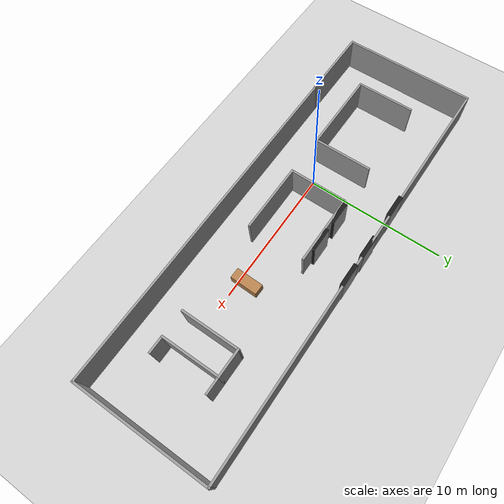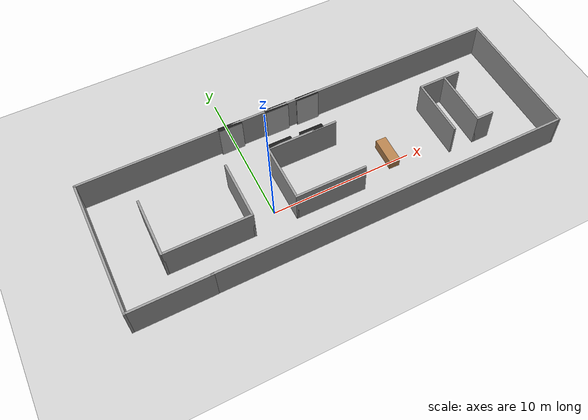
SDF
<sdf version="1.7">
 <world name="default">
  <light name="sun" type="directional">
   <pose>0 0 10 0 -0 0</pose>
   <diffuse>0.8 0.8 0.8 1</diffuse>
   <specular>0.2 0.2 0.2 1</specular>
   <attenuation>
    <range>1000</range>
    <constant>0.9</constant>
    <linear>0.01</linear>
    <quadratic>0.001</quadratic>
   </attenuation>
   <direction>-0.5 0.1 -0.9</direction>
   <spot><inner_angle>0</inner_angle><outer_angle>0</outer_angle><falloff>0</falloff></spot>
  </light>
  <model name="ground_plane">
   <static>1</static>
   <link name="link">
    <collision name="collision">
     <geometry><plane><normal>0 0 1</normal><size>100 100</size></plane></geometry>
     <surface>
      <contact><collide_bitmask>65535</collide_bitmask></contact>
      <friction><ode><mu>100</mu><mu2>50</mu2></ode></friction>
     </surface>
    </collision>
    <visual name="visual">
     <cast_shadows>0</cast_shadows>
     <geometry><plane><normal>0 0 1</normal><size>100 100</size></plane></geometry>
     <material>
      <script><uri>file://media/materials/scripts/gazebo.material</uri><name>Gazebo/Grey</name></script>
     </material>
    </visual>
   </link>
  </model>
  <gravity>0 0 -9.8</gravity>
  <magnetic_field>6e-06 2.3e-05 -4.2e-05</magnetic_field>
  <atmosphere type="adiabatic"/>
  <physics type="ode">
   <max_step_size>0.001</max_step_size>
   <real_time_factor>1</real_time_factor>
   <real_time_update_rate>1000</real_time_update_rate>
  </physics>
  <scene><ambient>0.4 0.4 0.4 1</ambient><background>0.7 0.7 0.7 1</background><shadows>1</shadows></scene>
  <spherical_coordinates>
   <surface_model>EARTH_WGS84</surface_model>
   <latitude_deg>0</latitude_deg>
   <longitude_deg>0</longitude_deg>
   <elevation>0</elevation>
   <heading_deg>0</heading_deg>
  </spherical_coordinates>
  <model name="poster">
   <link name="Wall_0">
    <pose>-4.7604 -4.48691 0 0 -0 0</pose>
    <visual name="Wall_0_Visual">
     <pose>0 0 1.25 0 -0 0</pose>
     <geometry><box><size>1.65 0.3 2.5</size></box></geometry>
     <material>
      <ambient>0.1 0.1 0.1 1</ambient>
      <shader type="pixel"/>
      <script><name>ModelPreview_1::Wall_0::Wall_0_Visual_MATERIAL_</name><uri>__default__</uri></script>
     </material>
     <meta><layer>0</layer></meta>
    </visual>
    <visual name="Poster_Face_Visual">
     <pose>0 0.151 1.25 0 -0 0</pose>
     <geometry><box><size>1.65 0.001 2.5</size></box></geometry>
     <material>
      <script>
       <uri>model://poster/materials/scripts/poster.material</uri>
       <uri>model://poster/materials/textures/poster.png</uri>
       <name>Poster/Image</name>
      </script>
      <shader type="pixel"/>
     </material>
    </visual>
    <visual name="Poster_Back_Visual">
     <pose>0 -0.151 1.25 0 -0 3.14159</pose>
     <geometry><box><size>1.65 0.001 2.5</size></box></geometry>
     <material>
      <script>
       <uri>model://poster/materials/scripts/poster.material</uri>
       <uri>model://poster/materials/textures/poster.png</uri>
       <name>Poster/Image</name>
      </script>
      <shader type="pixel"/>
     </material>
    </visual>
    <collision name="Wall_0_Collision">
     <pose>0 0 1.25 0 -0 0</pose>
     <geometry><box><size>1.65 0.3 2.5</size></box></geometry>
     <surface>
      <friction>
       <ode><mu>1</mu><mu2>1</mu2><fdir1>0 0 0</fdir1><slip1>0</slip1><slip2>0</slip2></ode>
       <torsional>
        <coefficient>1</coefficient>
        <patch_radius>0</patch_radius>
        <surface_radius>0</surface_radius>
        <use_patch_radius>1</use_patch_radius>
        <ode><slip>0</slip></ode>
       </torsional>
      </friction>
      <bounce><restitution_coefficient>0</restitution_coefficient><threshold>1e+06</threshold></bounce>
      <contact>
       <collide_without_contact>0</collide_without_contact>
       <collide_without_contact_bitmask>1</collide_without_contact_bitmask>
       <collide_bitmask>1</collide_bitmask>
       <ode>
        <soft_cfm>0</soft_cfm>
        <soft_erp>0.2</soft_erp>
        <kp>1e+13</kp>
        <kd>1</kd>
        <max_vel>0.01</max_vel>
        <min_depth>0</min_depth>
       </ode>
       <bullet>
        <split_impulse>1</split_impulse>
        <split_impulse_penetration_threshold>-0.01</split_impulse_penetration_threshold>
        <soft_cfm>0</soft_cfm>
        <soft_erp>0.2</soft_erp>
        <kp>1e+13</kp>
        <kd>1</kd>
       </bullet>
      </contact>
     </surface>
    </collision>
   </link>
   <static>1</static>
   <pose>7.88279 10.5175 0 0 -0 0</pose>
  </model>
  <model name="poster_clone">
   <link name="Wall_0">
    <pose>-4.7604 -4.48691 0 0 -0 0</pose>
    <visual name="Wall_0_Visual">
     <pose>0 0 1.25 0 -0 0</pose>
     <geometry><box><size>1.65 0.3 2.5</size></box></geometry>
     <material>
      <ambient>0.1 0.1 0.1 1</ambient>
      <shader type="pixel"/>
      <script><name>ModelPreview_1::Wall_0::Wall_0_Visual_MATERIAL_</name><uri>__default__</uri></script>
     </material>
     <meta><layer>0</layer></meta>
    </visual>
    <visual name="Poster_Face_Visual">
     <pose>0 0.151 1.25 0 -0 0</pose>
     <geometry><box><size>1.65 0.001 2.5</size></box></geometry>
     <material>
      <script>
       <uri>model://poster/materials/scripts/poster.material</uri>
       <uri>model://poster/materials/textures/poster.png</uri>
       <name>Poster/Image</name>
      </script>
      <shader type="pixel"/>
     </material>
    </visual>
    <visual name="Poster_Back_Visual">
     <pose>0 -0.151 1.25 0 -0 3.14159</pose>
     <geometry><box><size>1.65 0.001 2.5</size></box></geometry>
     <material>
      <script>
       <uri>model://poster/materials/scripts/poster.material</uri>
       <uri>model://poster/materials/textures/poster.png</uri>
       <name>Poster/Image</name>
      </script>
      <shader type="pixel"/>
     </material>
    </visual>
    <collision name="Wall_0_Collision">
     <pose>0 0 1.25 0 -0 0</pose>
     <geometry><box><size>1.65 0.3 2.5</size></box></geometry>
     <surface>
      <friction>
       <ode><mu>1</mu><mu2>1</mu2><fdir1>0 0 0</fdir1><slip1>0</slip1><slip2>0</slip2></ode>
       <torsional>
        <coefficient>1</coefficient>
        <patch_radius>0</patch_radius>
        <surface_radius>0</surface_radius>
        <use_patch_radius>1</use_patch_radius>
        <ode><slip>0</slip></ode>
       </torsional>
      </friction>
      <bounce><restitution_coefficient>0</restitution_coefficient><threshold>1e+06</threshold></bounce>
      <contact>
       <collide_without_contact>0</collide_without_contact>
       <collide_without_contact_bitmask>1</collide_without_contact_bitmask>
       <collide_bitmask>1</collide_bitmask>
       <ode>
        <soft_cfm>0</soft_cfm>
        <soft_erp>0.2</soft_erp>
        <kp>1e+13</kp>
        <kd>1</kd>
        <max_vel>0.01</max_vel>
        <min_depth>0</min_depth>
       </ode>
       <bullet>
        <split_impulse>1</split_impulse>
        <split_impulse_penetration_threshold>-0.01</split_impulse_penetration_threshold>
        <soft_cfm>0</soft_cfm>
        <soft_erp>0.2</soft_erp>
        <kp>1e+13</kp>
        <kd>1</kd>
       </bullet>
      </contact>
     </surface>
    </collision>
   </link>
   <static>1</static>
   <pose>10.1479 10.5018 0 0 -0 0</pose>
  </model>
  <model name="poster_clone_0">
   <link name="Wall_0">
    <pose>-4.7604 -4.48691 0 0 -0 0</pose>
    <visual name="Wall_0_Visual">
     <pose>0 0 1.25 0 -0 0</pose>
     <geometry><box><size>1.65 0.3 2.5</size></box></geometry>
     <material>
      <ambient>0.1 0.1 0.1 1</ambient>
      <shader type="pixel"/>
      <script><name>ModelPreview_1::Wall_0::Wall_0_Visual_MATERIAL_</name><uri>__default__</uri></script>
     </material>
     <meta><layer>0</layer></meta>
    </visual>
    <visual name="Poster_Face_Visual">
     <pose>0 0.151 1.25 0 -0 0</pose>
     <geometry><box><size>1.65 0.001 2.5</size></box></geometry>
     <material>
      <script>
       <uri>model://poster/materials/scripts/poster.material</uri>
       <uri>model://poster/materials/textures/poster.png</uri>
       <name>Poster/Image</name>
      </script>
      <shader type="pixel"/>
     </material>
    </visual>
    <visual name="Poster_Back_Visual">
     <pose>0 -0.151 1.25 0 -0 3.14159</pose>
     <geometry><box><size>1.65 0.001 2.5</size></box></geometry>
     <material>
      <script>
       <uri>model://poster/materials/scripts/poster.material</uri>
       <uri>model://poster/materials/textures/poster.png</uri>
       <name>Poster/Image</name>
      </script>
      <shader type="pixel"/>
     </material>
    </visual>
    <collision name="Wall_0_Collision">
     <pose>0 0 1.25 0 -0 0</pose>
     <geometry><box><size>1.65 0.3 2.5</size></box></geometry>
     <surface>
      <friction>
       <ode><mu>1</mu><mu2>1</mu2><fdir1>0 0 0</fdir1><slip1>0</slip1><slip2>0</slip2></ode>
       <torsional>
        <coefficient>1</coefficient>
        <patch_radius>0</patch_radius>
        <surface_radius>0</surface_radius>
        <use_patch_radius>1</use_patch_radius>
        <ode><slip>0</slip></ode>
       </torsional>
      </friction>
      <bounce><restitution_coefficient>0</restitution_coefficient><threshold>1e+06</threshold></bounce>
      <contact>
       <collide_without_contact>0</collide_without_contact>
       <collide_without_contact_bitmask>1</collide_without_contact_bitmask>
       <collide_bitmask>1</collide_bitmask>
       <ode>
        <soft_cfm>0</soft_cfm>
        <soft_erp>0.2</soft_erp>
        <kp>1e+13</kp>
        <kd>1</kd>
        <max_vel>0.01</max_vel>
        <min_depth>0</min_depth>
       </ode>
       <bullet>
        <split_impulse>1</split_impulse>
        <split_impulse_penetration_threshold>-0.01</split_impulse_penetration_threshold>
        <soft_cfm>0</soft_cfm>
        <soft_erp>0.2</soft_erp>
        <kp>1e+13</kp>
        <kd>1</kd>
       </bullet>
      </contact>
     </surface>
    </collision>
   </link>
   <static>1</static>
   <pose>6.8565 7.75311 0 0 -0 0</pose>
  </model>
  <model name="poster_clone_1">
   <link name="Wall_0">
    <pose>-4.7604 -4.48691 0 0 -0 0</pose>
    <visual name="Wall_0_Visual">
     <pose>0 0 1.25 0 -0 0</pose>
     <geometry><box><size>1.65 0.3 2.5</size></box></geometry>
     <material>
      <ambient>0.1 0.1 0.1 1</ambient>
      <shader type="pixel"/>
      <script><name>ModelPreview_1::Wall_0::Wall_0_Visual_MATERIAL_</name><uri>__default__</uri></script>
     </material>
     <meta><layer>0</layer></meta>
    </visual>
    <visual name="Poster_Face_Visual">
     <pose>0 0.151 1.25 0 -0 0</pose>
     <geometry><box><size>1.65 0.001 2.5</size></box></geometry>
     <material>
      <script>
       <uri>model://poster/materials/scripts/poster.material</uri>
       <uri>model://poster/materials/textures/poster.png</uri>
       <name>Poster/Image</name>
      </script>
      <shader type="pixel"/>
     </material>
    </visual>
    <visual name="Poster_Back_Visual">
     <pose>0 -0.151 1.25 0 -0 3.14159</pose>
     <geometry><box><size>1.65 0.001 2.5</size></box></geometry>
     <material>
      <script>
       <uri>model://poster/materials/scripts/poster.material</uri>
       <uri>model://poster/materials/textures/poster.png</uri>
       <name>Poster/Image</name>
      </script>
      <shader type="pixel"/>
     </material>
    </visual>
    <collision name="Wall_0_Collision">
     <pose>0 0 1.25 0 -0 0</pose>
     <geometry><box><size>1.65 0.3 2.5</size></box></geometry>
     <surface>
      <friction>
       <ode><mu>1</mu><mu2>1</mu2><fdir1>0 0 0</fdir1><slip1>0</slip1><slip2>0</slip2></ode>
       <torsional>
        <coefficient>1</coefficient>
        <patch_radius>0</patch_radius>
        <surface_radius>0</surface_radius>
        <use_patch_radius>1</use_patch_radius>
        <ode><slip>0</slip></ode>
       </torsional>
      </friction>
      <bounce><restitution_coefficient>0</restitution_coefficient><threshold>1e+06</threshold></bounce>
      <contact>
       <collide_without_contact>0</collide_without_contact>
       <collide_without_contact_bitmask>1</collide_without_contact_bitmask>
       <collide_bitmask>1</collide_bitmask>
       <ode>
        <soft_cfm>0</soft_cfm>
        <soft_erp>0.2</soft_erp>
        <kp>1e+13</kp>
        <kd>1</kd>
        <max_vel>0.01</max_vel>
        <min_depth>0</min_depth>
       </ode>
       <bullet>
        <split_impulse>1</split_impulse>
        <split_impulse_penetration_threshold>-0.01</split_impulse_penetration_threshold>
        <soft_cfm>0</soft_cfm>
        <soft_erp>0.2</soft_erp>
        <kp>1e+13</kp>
        <kd>1</kd>
       </bullet>
      </contact>
     </surface>
    </collision>
   </link>
   <static>1</static>
   <pose>9.13284 7.74816 0 0 -0 0</pose>
  </model>
  <model name="poster_clone_2">
   <link name="Wall_0">
    <pose>-4.7604 -4.48691 0 0 -0 0</pose>
    <visual name="Wall_0_Visual">
     <pose>0 0 1.25 0 -0 0</pose>
     <geometry><box><size>1.65 0.3 2.5</size></box></geometry>
     <material>
      <ambient>0.1 0.1 0.1 1</ambient>
      <shader type="pixel"/>
      <script><name>ModelPreview_1::Wall_0::Wall_0_Visual_MATERIAL_</name><uri>__default__</uri></script>
     </material>
     <meta><layer>0</layer></meta>
    </visual>
    <visual name="Poster_Face_Visual">
     <pose>0 0.151 1.25 0 -0 0</pose>
     <geometry><box><size>1.65 0.001 2.5</size></box></geometry>
     <material>
      <script>
       <uri>model://poster/materials/scripts/poster.material</uri>
       <uri>model://poster/materials/textures/poster.png</uri>
       <name>Poster/Image</name>
      </script>
      <shader type="pixel"/>
     </material>
    </visual>
    <visual name="Poster_Back_Visual">
     <pose>0 -0.151 1.25 0 -0 3.14159</pose>
     <geometry><box><size>1.65 0.001 2.5</size></box></geometry>
     <material>
      <script>
       <uri>model://poster/materials/scripts/poster.material</uri>
       <uri>model://poster/materials/textures/poster.png</uri>
       <name>Poster/Image</name>
      </script>
      <shader type="pixel"/>
     </material>
    </visual>
    <collision name="Wall_0_Collision">
     <pose>0 0 1.25 0 -0 0</pose>
     <geometry><box><size>1.65 0.3 2.5</size></box></geometry>
     <surface>
      <friction>
       <ode><mu>1</mu><mu2>1</mu2><fdir1>0 0 0</fdir1><slip1>0</slip1><slip2>0</slip2></ode>
       <torsional>
        <coefficient>1</coefficient>
        <patch_radius>0</patch_radius>
        <surface_radius>0</surface_radius>
        <use_patch_radius>1</use_patch_radius>
        <ode><slip>0</slip></ode>
       </torsional>
      </friction>
      <bounce><restitution_coefficient>0</restitution_coefficient><threshold>1e+06</threshold></bounce>
      <contact>
       <collide_without_contact>0</collide_without_contact>
       <collide_without_contact_bitmask>1</collide_without_contact_bitmask>
       <collide_bitmask>1</collide_bitmask>
       <ode>
        <soft_cfm>0</soft_cfm>
        <soft_erp>0.2</soft_erp>
        <kp>1e+13</kp>
        <kd>1</kd>
        <max_vel>0.01</max_vel>
        <min_depth>0</min_depth>
       </ode>
       <bullet>
        <split_impulse>1</split_impulse>
        <split_impulse_penetration_threshold>-0.01</split_impulse_penetration_threshold>
        <soft_cfm>0</soft_cfm>
        <soft_erp>0.2</soft_erp>
        <kp>1e+13</kp>
        <kd>1</kd>
       </bullet>
      </contact>
     </surface>
    </collision>
   </link>
   <static>1</static>
   <pose>4.4872 10.4919 0 0 -0 0</pose>
  </model>
  <model name="table_clone">
   <link name="link_0">
    <inertial>
     <mass>1</mass>
     <inertia>
      <ixx>0.166667</ixx>
      <ixy>0</ixy>
      <ixz>0</ixz>
      <iyy>0.166667</iyy>
      <iyz>0</iyz>
      <izz>0.166667</izz>
     </inertia>
    </inertial>
    <visual name="visual">
     <geometry><box><size>0.75 2 0.75</size></box></geometry>
     <material>
      <lighting>1</lighting>
      <script><uri>file://media/materials/scripts/gazebo.material</uri><name>Gazebo/Wood</name></script>
      <shader type="pixel"><normal_map>__default__</normal_map></shader>
      <ambient>0.3 0.3 0.3 1</ambient>
      <diffuse>0.7 0.7 0.7 1</diffuse>
      <specular>0.01 0.01 0.01 1</specular>
      <emissive>0 0 0 1</emissive>
     </material>
    </visual>
    <collision name="collision">
     <geometry><box><size>0.75 2 0.75</size></box></geometry>
     <surface>
      <friction>
       <ode><mu>1</mu><mu2>1</mu2><fdir1>0 0 0</fdir1><slip1>0</slip1><slip2>0</slip2></ode>
       <torsional>
        <coefficient>1</coefficient>
        <patch_radius>0</patch_radius>
        <surface_radius>0</surface_radius>
        <use_patch_radius>1</use_patch_radius>
        <ode><slip>0</slip></ode>
       </torsional>
      </friction>
      <bounce><restitution_coefficient>0</restitution_coefficient><threshold>1e+06</threshold></bounce>
      <contact>
       <collide_without_contact>0</collide_without_contact>
       <collide_without_contact_bitmask>1</collide_without_contact_bitmask>
       <collide_bitmask>1</collide_bitmask>
       <ode>
        <soft_cfm>0</soft_cfm>
        <soft_erp>0.2</soft_erp>
        <kp>1e+13</kp>
        <kd>1</kd>
        <max_vel>0.01</max_vel>
        <min_depth>0</min_depth>
       </ode>
       <bullet>
        <split_impulse>1</split_impulse>
        <split_impulse_penetration_threshold>-0.01</split_impulse_penetration_threshold>
        <soft_cfm>0</soft_cfm>
        <soft_erp>0.2</soft_erp>
        <kp>1e+13</kp>
        <kd>1</kd>
       </bullet>
      </contact>
     </surface>
    </collision>
   </link>
   <static>1</static>
   <pose>8.76478 0.585867 0.374993 4e-06 6e-06 -0.024219</pose>
  </model>
  <model name="wall">
   <pose>6.9448 1.27247 0 0 -0 0</pose>
   <link name="Wall_6">
    <collision name="Wall_6_Collision">
     <geometry><box><size>25 0.15 2.5</size></box></geometry>
     <pose>0 0 1.25 0 -0 0</pose>
    </collision>
    <visual name="Wall_6_Visual">
     <pose>0 0 1.25 0 -0 0</pose>
     <geometry><box><size>25 0.15 2.5</size></box></geometry>
     <material>
      <script><uri>file://media/materials/scripts/gazebo.material</uri><name>Gazebo/Grey</name></script>
      <ambient>1 1 1 1</ambient>
     </material>
     <meta><layer>0</layer></meta>
    </visual>
    <pose>0 -4.8 0 0 -0 0</pose>
   </link>
   <link name="Wall_9">
    <collision name="Wall_9_Collision">
     <geometry><box><size>9.75 0.15 2.5</size></box></geometry>
     <pose>0 0 1.25 0 -0 0</pose>
    </collision>
    <visual name="Wall_9_Visual">
     <pose>0 0 1.25 0 -0 0</pose>
     <geometry><box><size>9.75 0.15 2.5</size></box></geometry>
     <material>
      <script><uri>file://media/materials/scripts/gazebo.material</uri><name>Gazebo/Grey</name></script>
      <ambient>1 1 1 1</ambient>
     </material>
     <meta><layer>0</layer></meta>
    </visual>
    <pose>12.425 -0 0 0 -0 1.5708</pose>
   </link>
   <static>1</static>
  </model>
  <model name="external_wall">
   <pose>4.28 1.26 0 0 -0 0</pose>
   <link name="Wall_0">
    <collision name="Wall_0_Collision">
     <geometry><box><size>5.5 0.15 2.5</size></box></geometry>
     <pose>0 0 1.25 0 -0 0</pose>
    </collision>
    <visual name="Wall_0_Visual">
     <pose>0 0 1.25 0 -0 0</pose>
     <geometry><box><size>5.5 0.15 2.5</size></box></geometry>
     <material>
      <script><uri>file://media/materials/scripts/gazebo.material</uri><name>Gazebo/Grey</name></script>
      <ambient>1 1 1 1</ambient>
     </material>
     <meta><layer>0</layer></meta>
    </visual>
    <pose>-12.375 -4.8 0 0 -0 3.14159</pose>
   </link>
   <link name="Wall_3">
    <collision name="Wall_3_Collision">
     <geometry><box><size>9.75 0.15 2.5</size></box></geometry>
     <pose>0 0 1.25 0 -0 0</pose>
    </collision>
    <visual name="Wall_3_Visual">
     <pose>0 0 1.25 0 -0 0</pose>
     <geometry><box><size>9.75 0.15 2.5</size></box></geometry>
     <material>
      <script><uri>file://media/materials/scripts/gazebo.material</uri><name>Gazebo/Grey</name></script>
      <ambient>1 1 1 1</ambient>
     </material>
     <meta><layer>0</layer></meta>
    </visual>
    <pose>-15.05 0 0 0 -0 1.5708</pose>
   </link>
   <link name="Wall_5">
    <collision name="Wall_5_Collision">
     <geometry><box><size>30.25 0.15 2.5</size></box></geometry>
     <pose>0 0 1.25 0 -0 0</pose>
    </collision>
    <visual name="Wall_5_Visual">
     <pose>0 0 1.25 0 -0 0</pose>
     <geometry><box><size>30.25 0.15 2.5</size></box></geometry>
     <material>
      <script><uri>file://media/materials/scripts/gazebo.material</uri><name>Gazebo/Grey</name></script>
      <ambient>1 1 1 1</ambient>
     </material>
     <meta><layer>0</layer></meta>
    </visual>
    <pose>0 4.8 0 0 -0 0</pose>
   </link>
   <static>1</static>
  </model>
  <model name="rooms">
   <pose>4.05386 1.08111 0 0 -0 0</pose>
   <link name="Wall_10">
    <collision name="Wall_10_Collision">
     <geometry><box><size>4.25 0.15 2.5</size></box></geometry>
     <pose>0 0 1.25 0 -0 0</pose>
    </collision>
    <visual name="Wall_10_Visual">
     <pose>0 0 1.25 0 -0 0</pose>
     <geometry><box><size>4.25 0.15 2.5</size></box></geometry>
     <material>
      <script><uri>file://media/materials/scripts/gazebo.material</uri><name>Gazebo/Grey</name></script>
      <ambient>1 1 1 1</ambient>
     </material>
     <meta><layer>0</layer></meta>
    </visual>
    <pose>-11.675 0.031 0 0 -0 1.5708</pose>
   </link>
   <link name="Wall_12">
    <collision name="Wall_12_Collision">
     <geometry><box><size>5 0.15 2.5</size></box></geometry>
     <pose>0 0 1.25 0 -0 0</pose>
    </collision>
    <visual name="Wall_12_Visual">
     <pose>0 0 1.25 0 -0 0</pose>
     <geometry><box><size>5 0.15 2.5</size></box></geometry>
     <material>
      <script><uri>file://media/materials/scripts/gazebo.material</uri><name>Gazebo/Grey</name></script>
      <ambient>1 1 1 1</ambient>
     </material>
     <meta><layer>0</layer></meta>
    </visual>
    <pose>-0.434 2.037 0 0 -0 0</pose>
   </link>
   <link name="Wall_15">
    <collision name="Wall_15_Collision">
     <geometry><box><size>4.25 0.15 2.5</size></box></geometry>
     <pose>0 0 1.25 0 -0 0</pose>
    </collision>
    <visual name="Wall_15_Visual">
     <pose>0 0 1.25 0 -0 0</pose>
     <geometry><box><size>4.25 0.15 2.5</size></box></geometry>
     <material>
      <script><uri>file://media/materials/scripts/gazebo.material</uri><name>Gazebo/Grey</name></script>
      <ambient>1 1 1 1</ambient>
     </material>
     <meta><layer>0</layer></meta>
    </visual>
    <pose>-2.859 -0.013 0 0 -0 -1.5708</pose>
   </link>
   <link name="Wall_16">
    <collision name="Wall_16_Collision">
     <geometry><box><size>5 0.15 2.5</size></box></geometry>
     <pose>0 0 1.25 0 -0 0</pose>
    </collision>
    <visual name="Wall_16_Visual">
     <pose>0 0 1.25 0 -0 0</pose>
     <geometry><box><size>5 0.15 2.5</size></box></geometry>
     <material>
      <script><uri>file://media/materials/scripts/gazebo.material</uri><name>Gazebo/Grey</name></script>
      <ambient>1 1 1 1</ambient>
     </material>
     <meta><layer>0</layer></meta>
    </visual>
    <pose>-0.434 -2.063 0 0 -0 0</pose>
   </link>
   <link name="Wall_18">
    <collision name="Wall_18_Collision">
     <geometry><box><size>4.25 0.15 2.5</size></box></geometry>
     <pose>0 0 1.25 0 -0 0</pose>
    </collision>
    <visual name="Wall_18_Visual">
     <pose>0 0 1.25 0 -0 0</pose>
     <geometry><box><size>4.25 0.15 2.5</size></box></geometry>
     <material>
      <script><uri>file://media/materials/scripts/gazebo.material</uri><name>Gazebo/Grey</name></script>
      <ambient>1 1 1 1</ambient>
     </material>
     <meta><layer>0</layer></meta>
    </visual>
    <pose>8.725 -0.031 0 0 -0 1.5708</pose>
   </link>
   <link name="Wall_20">
    <collision name="Wall_20_Collision">
     <geometry><box><size>2 0.15 2.5</size></box></geometry>
     <pose>0 0 1.25 0 -0 0</pose>
    </collision>
    <visual name="Wall_20_Visual">
     <pose>0 0 1.25 0 -0 0</pose>
     <geometry><box><size>2 0.15 2.5</size></box></geometry>
     <material>
      <script><uri>file://media/materials/scripts/gazebo.material</uri><name>Gazebo/Grey</name></script>
      <ambient>1 1 1 1</ambient>
     </material>
     <meta><layer>0</layer></meta>
    </visual>
    <pose>9.65 2.019 0 0 -0 0</pose>
   </link>
   <link name="Wall_22">
    <collision name="Wall_22_Collision">
     <geometry><box><size>4.25 0.15 2.5</size></box></geometry>
     <pose>0 0 1.25 0 -0 0</pose>
    </collision>
    <visual name="Wall_22_Visual">
     <pose>0 0 1.25 0 -0 0</pose>
     <geometry><box><size>4.25 0.15 2.5</size></box></geometry>
     <material>
      <script><uri>file://media/materials/scripts/gazebo.material</uri><name>Gazebo/Grey</name></script>
      <ambient>1 1 1 1</ambient>
     </material>
     <meta><layer>0</layer></meta>
    </visual>
    <pose>10.575 -0.031 0 0 -0 -1.5708</pose>
   </link>
   <link name="Wall_23">
    <collision name="Wall_23_Collision">
     <geometry><box><size>1.25 0.15 2.5</size></box></geometry>
     <pose>0 0 1.25 0 -0 0</pose>
    </collision>
    <visual name="Wall_23_Visual">
     <pose>0 0 1.25 0 -0 0</pose>
     <geometry><box><size>1.25 0.15 2.5</size></box></geometry>
     <material>
      <script><uri>file://media/materials/scripts/gazebo.material</uri><name>Gazebo/Grey</name></script>
      <ambient>1 1 1 1</ambient>
     </material>
     <meta><layer>0</layer></meta>
    </visual>
    <pose>11.125 -2.081 0 0 -0 0</pose>
   </link>
   <link name="Wall_25">
    <collision name="Wall_25_Collision">
     <geometry><box><size>1.25 0.15 2.5</size></box></geometry>
     <pose>0 0 1.25 0 -0 0</pose>
    </collision>
    <visual name="Wall_25_Visual">
     <pose>0 0 1.25 0 -0 0</pose>
     <geometry><box><size>1.25 0.15 2.5</size></box></geometry>
     <material>
      <script><uri>file://media/materials/scripts/gazebo.material</uri><name>Gazebo/Grey</name></script>
      <ambient>1 1 1 1</ambient>
     </material>
     <meta><layer>0</layer></meta>
    </visual>
    <pose>11.125 2.019 0 0 -0 0</pose>
   </link>
   <link name="Wall_7">
    <collision name="Wall_7_Collision">
     <geometry><box><size>6 0.15 2.5</size></box></geometry>
     <pose>0 0 1.25 0 -0 0</pose>
    </collision>
    <visual name="Wall_7_Visual">
     <pose>0 0 1.25 0 -0 0</pose>
     <geometry><box><size>6 0.15 2.5</size></box></geometry>
     <material>
      <script><uri>file://media/materials/scripts/gazebo.material</uri><name>Gazebo/Grey</name></script>
      <ambient>1 1 1 1</ambient>
     </material>
     <meta><layer>0</layer></meta>
    </visual>
    <pose>-8.75 -2.019 0 0 -0 0</pose>
   </link>
   <link name="Wall_8">
    <collision name="Wall_8_Collision">
     <geometry><box><size>4.25 0.15 2.5</size></box></geometry>
     <pose>0 0 1.25 0 -0 0</pose>
    </collision>
    <visual name="Wall_8_Visual">
     <pose>0 0 1.25 0 -0 0</pose>
     <geometry><box><size>4.25 0.15 2.5</size></box></geometry>
     <material>
      <script><uri>file://media/materials/scripts/gazebo.material</uri><name>Gazebo/Grey</name></script>
      <ambient>1 1 1 1</ambient>
     </material>
     <meta><layer>0</layer></meta>
    </visual>
    <pose>-5.825 0.031 0 0 -0 1.5708</pose>
   </link>
   <static>1</static>
  </model>
  <plugin name="ActorPosesPlugin" filename="libActorPosesPlugin.so"/>
 </world>
</sdf>
